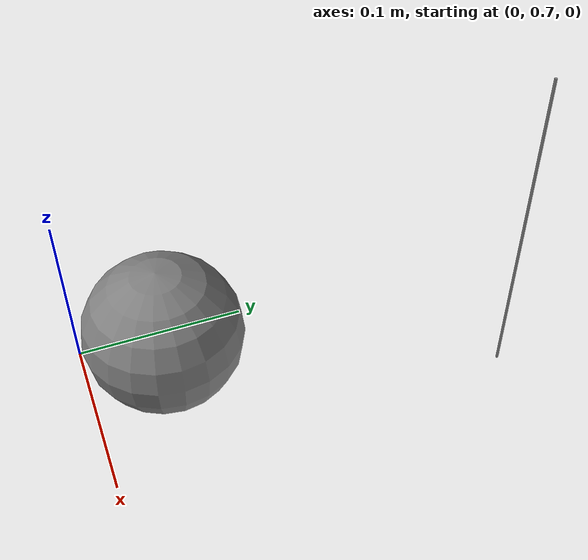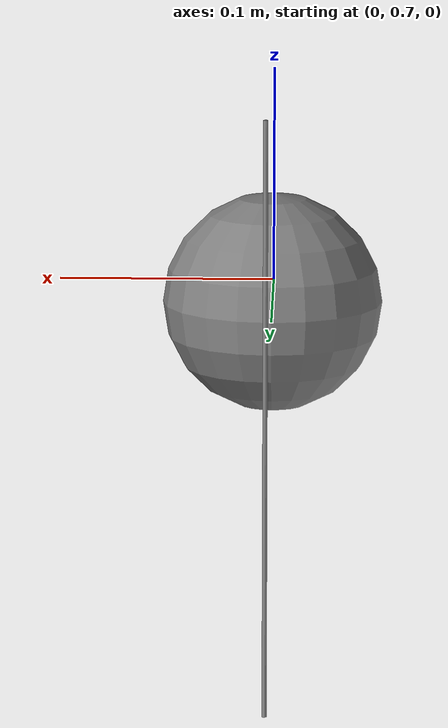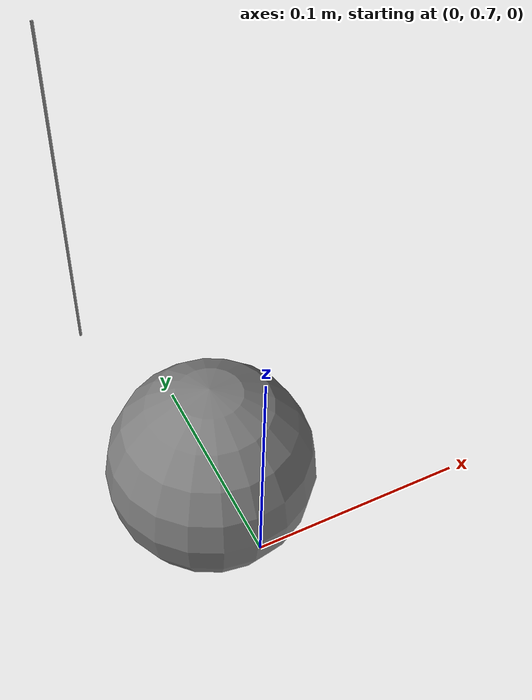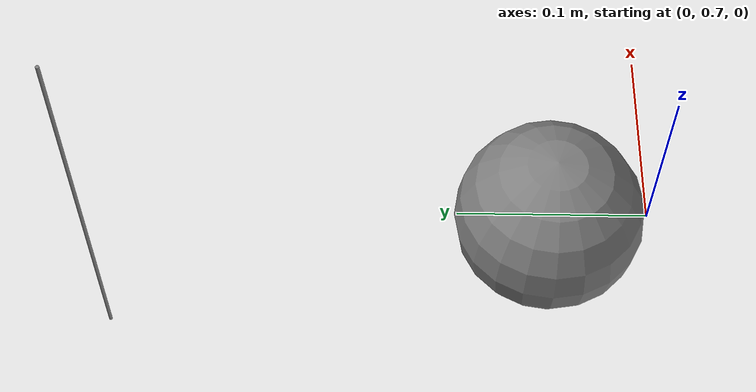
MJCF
<mujoco>
  <option gravity="0 -9.81 0"/>

  <worldbody>
    <light diffuse=".5 .5 .5" pos="0 0 3" dir="0 0 -1"/>

    <body name="pendulum" pos="0 1 0">
      <joint name="hinge" type="hinge" axis="0 0 1" damping="0" frictionloss="0"/>
      <geom type="cylinder" size="0.001 0.12425" mass="0" contype="0" conaffinity="0"/>
      <body name="bob" pos="0 -0.2485 0">
        <geom type="sphere" size="0.05" mass="1.0"/>
      </body>
    </body>
  </worldbody>
</mujoco>
